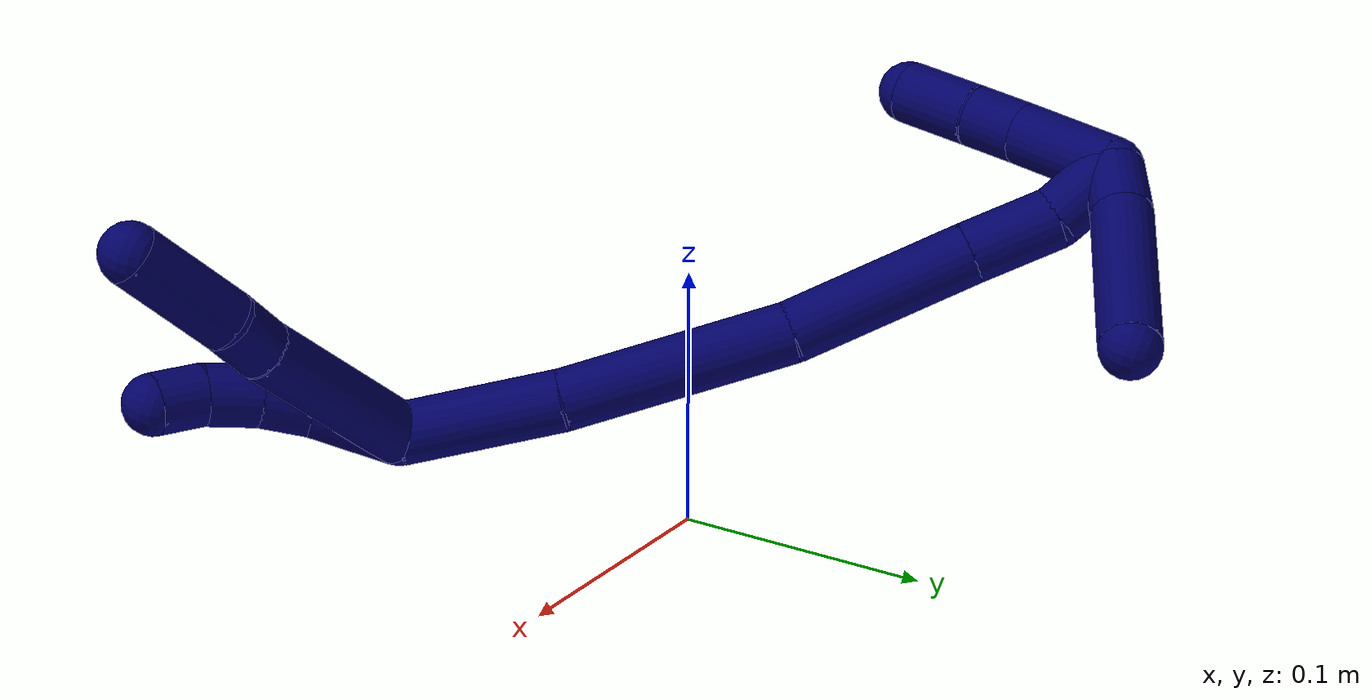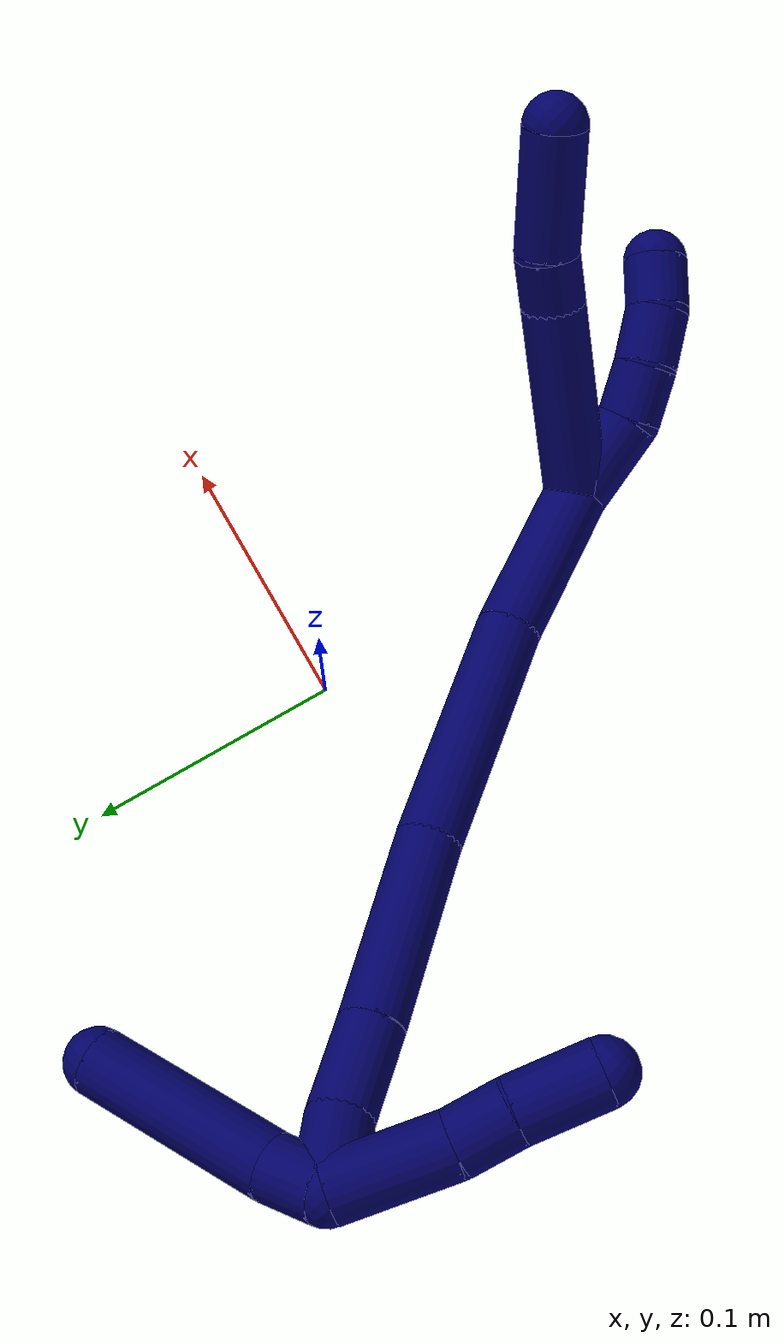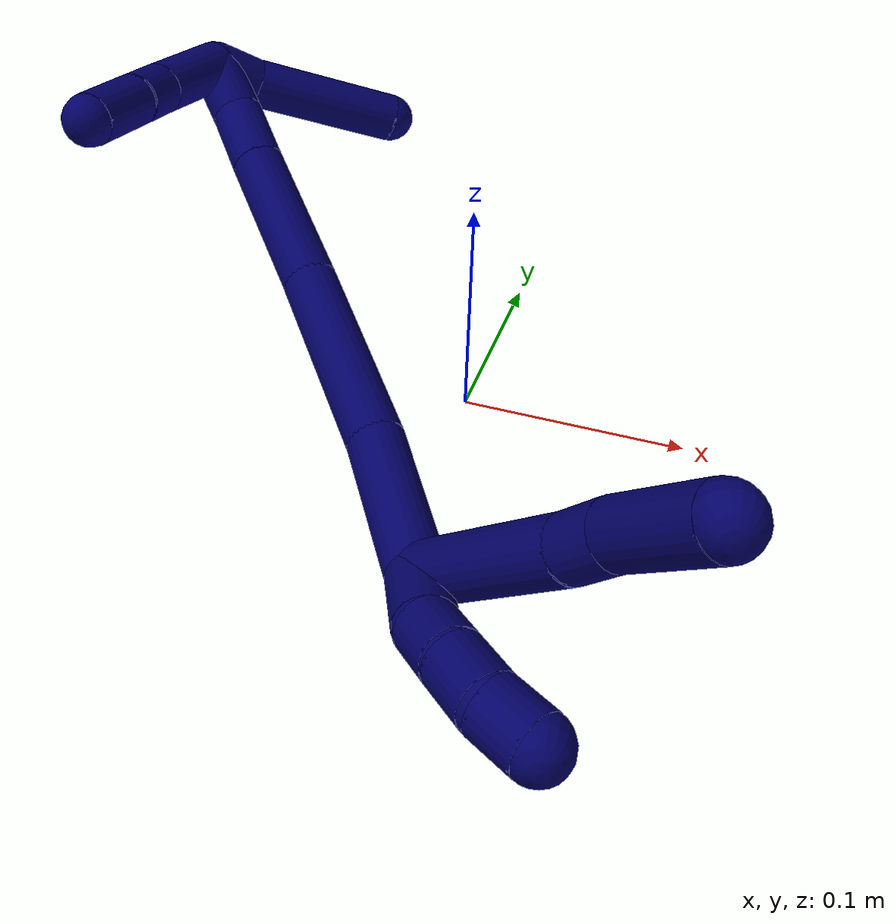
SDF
<sdf version="1.7">
 <world name="default">
  <model name="7">
   <static>0</static>
   <link name="7">
    <collision name="collision-cylinder-e_1_2_8">
     <pose>0.031743 0.00873 0.022664 -0.367682 0.917702 -0.183202</pose>
     <geometry><cylinder><radius>0.0125</radius><length>0.079937</length></cylinder></geometry>
     <surface>
      <friction><ode><mu>1.16</mu><mu2>1.16</mu2><slip1>0</slip1><slip2>0</slip2></ode></friction>
      <contact><ode><kp>1e+06</kp><kd>1</kd><max_vel>0</max_vel><min_depth>0.001</min_depth></ode></contact>
     </surface>
    </collision>
    <visual name="visual-cylinder-e_1_2_8">
     <pose>0.031743 0.00873 0.022664 -0.367682 0.917702 -0.183202</pose>
     <geometry><cylinder><radius>0.0125</radius><length>0.079937</length></cylinder></geometry>
     <material><ambient>0.003922 0 0.403922 1</ambient></material>
    </visual>
    <collision name="collision-cylinder-e_2_8_9">
     <pose>0.071839 0.020804 0.051016 -0.53148 0.902105 -0.262148</pose>
     <geometry><cylinder><radius>0.0125</radius><length>0.021289</length></cylinder></geometry>
     <surface>
      <friction><ode><mu>1.16</mu><mu2>1.16</mu2><slip1>0</slip1><slip2>0</slip2></ode></friction>
      <contact><ode><kp>1e+06</kp><kd>1</kd><max_vel>0</max_vel><min_depth>0.001</min_depth></ode></contact>
     </surface>
    </collision>
    <visual name="visual-cylinder-e_2_8_9">
     <pose>0.071839 0.020804 0.051016 -0.53148 0.902105 -0.262148</pose>
     <geometry><cylinder><radius>0.0125</radius><length>0.021289</length></cylinder></geometry>
     <material><ambient>0.003922 0 0.403922 1</ambient></material>
    </visual>
    <collision name="collision-cylinder-e_3_9_6">
     <pose>0.096616 0.030773 0.07347 -0.376283 0.738959 -0.147199</pose>
     <geometry><cylinder><radius>0.0125</radius><length>0.048774</length></cylinder></geometry>
     <surface>
      <friction><ode><mu>1.16</mu><mu2>1.16</mu2><slip1>0</slip1><slip2>0</slip2></ode></friction>
      <contact><ode><kp>1e+06</kp><kd>1</kd><max_vel>0</max_vel><min_depth>0.001</min_depth></ode></contact>
     </surface>
    </collision>
    <visual name="visual-cylinder-e_3_9_6">
     <pose>0.096616 0.030773 0.07347 -0.376283 0.738959 -0.147199</pose>
     <geometry><cylinder><radius>0.0125</radius><length>0.048774</length></cylinder></geometry>
     <material><ambient>0.003922 0 0.403922 1</ambient></material>
    </visual>
    <collision name="collision-cylinder-e_1_2_10">
     <pose>0.002617 -0.000566 0.017359 0.032619 0.149539 0.002444</pose>
     <geometry><cylinder><radius>0.0125</radius><length>0.035128</length></cylinder></geometry>
     <surface>
      <friction><ode><mu>1.16</mu><mu2>1.16</mu2><slip1>0</slip1><slip2>0</slip2></ode></friction>
      <contact><ode><kp>1e+06</kp><kd>1</kd><max_vel>0</max_vel><min_depth>0.001</min_depth></ode></contact>
     </surface>
    </collision>
    <visual name="visual-cylinder-e_1_2_10">
     <pose>0.002617 -0.000566 0.017359 0.032619 0.149539 0.002444</pose>
     <geometry><cylinder><radius>0.0125</radius><length>0.035128</length></cylinder></geometry>
     <material><ambient>0.003922 0 0.403922 1</ambient></material>
    </visual>
    <collision name="collision-cylinder-e_2_10_11">
     <pose>0.009974 -0.00259 0.04443 0.148878 0.449669 0.034108</pose>
     <geometry><cylinder><radius>0.0125</radius><length>0.02181</length></cylinder></geometry>
     <surface>
      <friction><ode><mu>1.16</mu><mu2>1.16</mu2><slip1>0</slip1><slip2>0</slip2></ode></friction>
      <contact><ode><kp>1e+06</kp><kd>1</kd><max_vel>0</max_vel><min_depth>0.001</min_depth></ode></contact>
     </surface>
    </collision>
    <visual name="visual-cylinder-e_2_10_11">
     <pose>0.009974 -0.00259 0.04443 0.148878 0.449669 0.034108</pose>
     <geometry><cylinder><radius>0.0125</radius><length>0.02181</length></cylinder></geometry>
     <material><ambient>0.003922 0 0.403922 1</ambient></material>
    </visual>
    <collision name="collision-cylinder-e_3_11_12">
     <pose>0.01994 -0.007262 0.063657 0.325959 0.47983 0.080409</pose>
     <geometry><cylinder><radius>0.0125</radius><length>0.022644</length></cylinder></geometry>
     <surface>
      <friction><ode><mu>1.16</mu><mu2>1.16</mu2><slip1>0</slip1><slip2>0</slip2></ode></friction>
      <contact><ode><kp>1e+06</kp><kd>1</kd><max_vel>0</max_vel><min_depth>0.001</min_depth></ode></contact>
     </surface>
    </collision>
    <visual name="visual-cylinder-e_3_11_12">
     <pose>0.01994 -0.007262 0.063657 0.325959 0.47983 0.080409</pose>
     <geometry><cylinder><radius>0.0125</radius><length>0.022644</length></cylinder></geometry>
     <material><ambient>0.003922 0 0.403922 1</ambient></material>
    </visual>
    <collision name="collision-cylinder-e_4_12_5">
     <pose>0.031276 -0.015029 0.079968 0.589983 0.64159 0.201244</pose>
     <geometry><cylinder><radius>0.0125</radius><length>0.020417</length></cylinder></geometry>
     <surface>
      <friction><ode><mu>1.16</mu><mu2>1.16</mu2><slip1>0</slip1><slip2>0</slip2></ode></friction>
      <contact><ode><kp>1e+06</kp><kd>1</kd><max_vel>0</max_vel><min_depth>0.001</min_depth></ode></contact>
     </surface>
    </collision>
    <visual name="visual-cylinder-e_4_12_5">
     <pose>0.031276 -0.015029 0.079968 0.589983 0.64159 0.201244</pose>
     <geometry><cylinder><radius>0.0125</radius><length>0.020417</length></cylinder></geometry>
     <material><ambient>0.003922 0 0.403922 1</ambient></material>
    </visual>
    <collision name="collision-cylinder-e_1_2_13">
     <pose>-0.004158 0.017003 -0.027377 -2.58584 -0.128322 0.44307</pose>
     <geometry><cylinder><radius>0.0125</radius><length>0.064989</length></cylinder></geometry>
     <surface>
      <friction><ode><mu>1.16</mu><mu2>1.16</mu2><slip1>0</slip1><slip2>0</slip2></ode></friction>
      <contact><ode><kp>1e+06</kp><kd>1</kd><max_vel>0</max_vel><min_depth>0.001</min_depth></ode></contact>
     </surface>
    </collision>
    <visual name="visual-cylinder-e_1_2_13">
     <pose>-0.004158 0.017003 -0.027377 -2.58584 -0.128322 0.44307</pose>
     <geometry><cylinder><radius>0.0125</radius><length>0.064989</length></cylinder></geometry>
     <material><ambient>0.003922 0 0.403922 1</ambient></material>
    </visual>
    <collision name="collision-cylinder-e_2_13_14">
     <pose>-0.017069 0.0615 -0.091287 -2.49642 -0.189127 0.552966</pose>
     <geometry><cylinder><radius>0.0125</radius><length>0.093107</length></cylinder></geometry>
     <surface>
      <friction><ode><mu>1.16</mu><mu2>1.16</mu2><slip1>0</slip1><slip2>0</slip2></ode></friction>
      <contact><ode><kp>1e+06</kp><kd>1</kd><max_vel>0</max_vel><min_depth>0.001</min_depth></ode></contact>
     </surface>
    </collision>
    <visual name="visual-cylinder-e_2_13_14">
     <pose>-0.017069 0.0615 -0.091287 -2.49642 -0.189127 0.552966</pose>
     <geometry><cylinder><radius>0.0125</radius><length>0.093107</length></cylinder></geometry>
     <material><ambient>0.003922 0 0.403922 1</ambient></material>
    </visual>
    <collision name="collision-cylinder-e_3_14_15">
     <pose>-0.032789 0.115137 -0.1545 -2.36639 -0.184439 0.445539</pose>
     <geometry><cylinder><radius>0.0125</radius><length>0.075995</length></cylinder></geometry>
     <surface>
      <friction><ode><mu>1.16</mu><mu2>1.16</mu2><slip1>0</slip1><slip2>0</slip2></ode></friction>
      <contact><ode><kp>1e+06</kp><kd>1</kd><max_vel>0</max_vel><min_depth>0.001</min_depth></ode></contact>
     </surface>
    </collision>
    <visual name="visual-cylinder-e_3_14_15">
     <pose>-0.032789 0.115137 -0.1545 -2.36639 -0.184439 0.445539</pose>
     <geometry><cylinder><radius>0.0125</radius><length>0.075995</length></cylinder></geometry>
     <material><ambient>0.003922 0 0.403922 1</ambient></material>
    </visual>
    <collision name="collision-cylinder-e_4_15_16">
     <pose>-0.042837 0.15344 -0.194231 -2.39143 -0.170925 0.428508</pose>
     <geometry><cylinder><radius>0.0125</radius><length>0.036203</length></cylinder></geometry>
     <surface>
      <friction><ode><mu>1.16</mu><mu2>1.16</mu2><slip1>0</slip1><slip2>0</slip2></ode></friction>
      <contact><ode><kp>1e+06</kp><kd>1</kd><max_vel>0</max_vel><min_depth>0.001</min_depth></ode></contact>
     </surface>
    </collision>
    <visual name="visual-cylinder-e_4_15_16">
     <pose>-0.042837 0.15344 -0.194231 -2.39143 -0.170925 0.428508</pose>
     <geometry><cylinder><radius>0.0125</radius><length>0.036203</length></cylinder></geometry>
     <material><ambient>0.003922 0 0.403922 1</ambient></material>
    </visual>
    <collision name="collision-cylinder-e_5_16_1">
     <pose>-0.047964 0.178482 -0.214386 -2.07492 -0.138349 0.233633</pose>
     <geometry><cylinder><radius>0.0125</radius><length>0.029706</length></cylinder></geometry>
     <surface>
      <friction><ode><mu>1.16</mu><mu2>1.16</mu2><slip1>0</slip1><slip2>0</slip2></ode></friction>
      <contact><ode><kp>1e+06</kp><kd>1</kd><max_vel>0</max_vel><min_depth>0.001</min_depth></ode></contact>
     </surface>
    </collision>
    <visual name="visual-cylinder-e_5_16_1">
     <pose>-0.047964 0.178482 -0.214386 -2.07492 -0.138349 0.233633</pose>
     <geometry><cylinder><radius>0.0125</radius><length>0.029706</length></cylinder></geometry>
     <material><ambient>0.003922 0 0.403922 1</ambient></material>
    </visual>
    <collision name="collision-cylinder-e_1_1_17">
     <pose>-0.043545 0.183282 -0.22691 2.16138 0.586706 1.03035</pose>
     <geometry><cylinder><radius>0.0125</radius><length>0.023366</length></cylinder></geometry>
     <surface>
      <friction><ode><mu>1.16</mu><mu2>1.16</mu2><slip1>0</slip1><slip2>0</slip2></ode></friction>
      <contact><ode><kp>1e+06</kp><kd>1</kd><max_vel>0</max_vel><min_depth>0.001</min_depth></ode></contact>
     </surface>
    </collision>
    <visual name="visual-cylinder-e_1_1_17">
     <pose>-0.043545 0.183282 -0.22691 2.16138 0.586706 1.03035</pose>
     <geometry><cylinder><radius>0.0125</radius><length>0.023366</length></cylinder></geometry>
     <material><ambient>0.003922 0 0.403922 1</ambient></material>
    </visual>
    <collision name="collision-cylinder-e_2_17_4">
     <pose>-0.009364 0.151959 -0.244976 2.06919 0.808505 1.2479</pose>
     <geometry><cylinder><radius>0.0125</radius><length>0.076634</length></cylinder></geometry>
     <surface>
      <friction><ode><mu>1.16</mu><mu2>1.16</mu2><slip1>0</slip1><slip2>0</slip2></ode></friction>
      <contact><ode><kp>1e+06</kp><kd>1</kd><max_vel>0</max_vel><min_depth>0.001</min_depth></ode></contact>
     </surface>
    </collision>
    <visual name="visual-cylinder-e_2_17_4">
     <pose>-0.009364 0.151959 -0.244976 2.06919 0.808505 1.2479</pose>
     <geometry><cylinder><radius>0.0125</radius><length>0.076634</length></cylinder></geometry>
     <material><ambient>0.003922 0 0.403922 1</ambient></material>
    </visual>
    <collision name="collision-cylinder-e_1_1_18">
     <pose>-0.059897 0.192202 -0.20136 -0.041645 -0.456037 0.009665</pose>
     <geometry><cylinder><radius>0.0125</radius><length>0.044887</length></cylinder></geometry>
     <surface>
      <friction><ode><mu>1.16</mu><mu2>1.16</mu2><slip1>0</slip1><slip2>0</slip2></ode></friction>
      <contact><ode><kp>1e+06</kp><kd>1</kd><max_vel>0</max_vel><min_depth>0.001</min_depth></ode></contact>
     </surface>
    </collision>
    <visual name="visual-cylinder-e_1_1_18">
     <pose>-0.059897 0.192202 -0.20136 -0.041645 -0.456037 0.009665</pose>
     <geometry><cylinder><radius>0.0125</radius><length>0.044887</length></cylinder></geometry>
     <material><ambient>0.003922 0 0.403922 1</ambient></material>
    </visual>
    <collision name="collision-cylinder-e_2_18_19">
     <pose>-0.073062 0.193293 -0.170455 -0.023349 -0.29565 0.003477</pose>
     <geometry><cylinder><radius>0.0125</radius><length>0.022528</length></cylinder></geometry>
     <surface>
      <friction><ode><mu>1.16</mu><mu2>1.16</mu2><slip1>0</slip1><slip2>0</slip2></ode></friction>
      <contact><ode><kp>1e+06</kp><kd>1</kd><max_vel>0</max_vel><min_depth>0.001</min_depth></ode></contact>
     </surface>
    </collision>
    <visual name="visual-cylinder-e_2_18_19">
     <pose>-0.073062 0.193293 -0.170455 -0.023349 -0.29565 0.003477</pose>
     <geometry><cylinder><radius>0.0125</radius><length>0.022528</length></cylinder></geometry>
     <material><ambient>0.003922 0 0.403922 1</ambient></material>
    </visual>
    <collision name="collision-cylinder-e_3_19_3">
     <pose>-0.082702 0.193864 -0.144685 -0.02129 -0.400844 0.004325</pose>
     <geometry><cylinder><radius>0.0125</radius><length>0.032585</length></cylinder></geometry>
     <surface>
      <friction><ode><mu>1.16</mu><mu2>1.16</mu2><slip1>0</slip1><slip2>0</slip2></ode></friction>
      <contact><ode><kp>1e+06</kp><kd>1</kd><max_vel>0</max_vel><min_depth>0.001</min_depth></ode></contact>
     </surface>
    </collision>
    <visual name="visual-cylinder-e_3_19_3">
     <pose>-0.082702 0.193864 -0.144685 -0.02129 -0.400844 0.004325</pose>
     <geometry><cylinder><radius>0.0125</radius><length>0.032585</length></cylinder></geometry>
     <material><ambient>0.003922 0 0.403922 1</ambient></material>
    </visual>
    <collision name="collision-sphere-3">
     <pose>-0.089059 0.194183 -0.129688 0 -0 0</pose>
     <geometry><sphere><radius>0.0125</radius></sphere></geometry>
     <surface>
      <friction><ode><mu>1.16</mu><mu2>1.16</mu2><slip1>0</slip1><slip2>0</slip2></ode></friction>
      <contact><ode><kp>1e+06</kp><kd>1</kd><max_vel>0</max_vel><min_depth>0.001</min_depth></ode></contact>
     </surface>
    </collision>
    <visual name="visual-sphere-3">
     <pose>-0.089059 0.194183 -0.129688 0 -0 0</pose>
     <geometry><sphere><radius>0.0125</radius></sphere></geometry>
     <material><ambient>0.003922 0 0.403922 1</ambient></material>
    </visual>
    <collision name="collision-sphere-19">
     <pose>-0.076344 0.193544 -0.159683 0 -0 0</pose>
     <geometry><sphere><radius>0.0125</radius></sphere></geometry>
     <surface>
      <friction><ode><mu>1.16</mu><mu2>1.16</mu2><slip1>0</slip1><slip2>0</slip2></ode></friction>
      <contact><ode><kp>1e+06</kp><kd>1</kd><max_vel>0</max_vel><min_depth>0.001</min_depth></ode></contact>
     </surface>
    </collision>
    <visual name="visual-sphere-19">
     <pose>-0.076344 0.193544 -0.159683 0 -0 0</pose>
     <geometry><sphere><radius>0.0125</radius></sphere></geometry>
     <material><ambient>0.003922 0 0.403922 1</ambient></material>
    </visual>
    <collision name="collision-sphere-11">
     <pose>0.014714 -0.004046 0.054143 0 -0 0</pose>
     <geometry><sphere><radius>0.0125</radius></sphere></geometry>
     <surface>
      <friction><ode><mu>1.16</mu><mu2>1.16</mu2><slip1>0</slip1><slip2>0</slip2></ode></friction>
      <contact><ode><kp>1e+06</kp><kd>1</kd><max_vel>0</max_vel><min_depth>0.001</min_depth></ode></contact>
     </surface>
    </collision>
    <visual name="visual-sphere-11">
     <pose>0.014714 -0.004046 0.054143 0 -0 0</pose>
     <geometry><sphere><radius>0.0125</radius></sphere></geometry>
     <material><ambient>0.003922 0 0.403922 1</ambient></material>
    </visual>
    <collision name="collision-sphere-10">
     <pose>0.005234 -0.001133 0.034718 0 -0 0</pose>
     <geometry><sphere><radius>0.0125</radius></sphere></geometry>
     <surface>
      <friction><ode><mu>1.16</mu><mu2>1.16</mu2><slip1>0</slip1><slip2>0</slip2></ode></friction>
      <contact><ode><kp>1e+06</kp><kd>1</kd><max_vel>0</max_vel><min_depth>0.001</min_depth></ode></contact>
     </surface>
    </collision>
    <visual name="visual-sphere-10">
     <pose>0.005234 -0.001133 0.034718 0 -0 0</pose>
     <geometry><sphere><radius>0.0125</radius></sphere></geometry>
     <material><ambient>0.003922 0 0.403922 1</ambient></material>
    </visual>
    <collision name="collision-sphere-6">
     <pose>0.113041 0.037397 0.090235 0 -0 0</pose>
     <geometry><sphere><radius>0.0125</radius></sphere></geometry>
     <surface>
      <friction><ode><mu>1.16</mu><mu2>1.16</mu2><slip1>0</slip1><slip2>0</slip2></ode></friction>
      <contact><ode><kp>1e+06</kp><kd>1</kd><max_vel>0</max_vel><min_depth>0.001</min_depth></ode></contact>
     </surface>
    </collision>
    <visual name="visual-sphere-6">
     <pose>0.113041 0.037397 0.090235 0 -0 0</pose>
     <geometry><sphere><radius>0.0125</radius></sphere></geometry>
     <material><ambient>0.003922 0 0.403922 1</ambient></material>
    </visual>
    <collision name="collision-sphere-9">
     <pose>0.080191 0.024149 0.056705 0 -0 0</pose>
     <geometry><sphere><radius>0.0125</radius></sphere></geometry>
     <surface>
      <friction><ode><mu>1.16</mu><mu2>1.16</mu2><slip1>0</slip1><slip2>0</slip2></ode></friction>
      <contact><ode><kp>1e+06</kp><kd>1</kd><max_vel>0</max_vel><min_depth>0.001</min_depth></ode></contact>
     </surface>
    </collision>
    <visual name="visual-sphere-9">
     <pose>0.080191 0.024149 0.056705 0 -0 0</pose>
     <geometry><sphere><radius>0.0125</radius></sphere></geometry>
     <material><ambient>0.003922 0 0.403922 1</ambient></material>
    </visual>
    <collision name="collision-sphere-2">
     <geometry><sphere><radius>0.0125</radius></sphere></geometry>
     <surface>
      <friction><ode><mu>1.16</mu><mu2>1.16</mu2><slip1>0</slip1><slip2>0</slip2></ode></friction>
      <contact><ode><kp>1e+06</kp><kd>1</kd><max_vel>0</max_vel><min_depth>0.001</min_depth></ode></contact>
     </surface>
    </collision>
    <visual name="visual-sphere-2">
     <geometry><sphere><radius>0.0125</radius></sphere></geometry>
     <material><ambient>0.003922 0 0.403922 1</ambient></material>
    </visual>
    <collision name="collision-sphere-8">
     <pose>0.063487 0.01746 0.045327 0 -0 0</pose>
     <geometry><sphere><radius>0.0125</radius></sphere></geometry>
     <surface>
      <friction><ode><mu>1.16</mu><mu2>1.16</mu2><slip1>0</slip1><slip2>0</slip2></ode></friction>
      <contact><ode><kp>1e+06</kp><kd>1</kd><max_vel>0</max_vel><min_depth>0.001</min_depth></ode></contact>
     </surface>
    </collision>
    <visual name="visual-sphere-8">
     <pose>0.063487 0.01746 0.045327 0 -0 0</pose>
     <geometry><sphere><radius>0.0125</radius></sphere></geometry>
     <material><ambient>0.003922 0 0.403922 1</ambient></material>
    </visual>
    <collision name="collision-sphere-12">
     <pose>0.025167 -0.010478 0.073172 0 -0 0</pose>
     <geometry><sphere><radius>0.0125</radius></sphere></geometry>
     <surface>
      <friction><ode><mu>1.16</mu><mu2>1.16</mu2><slip1>0</slip1><slip2>0</slip2></ode></friction>
      <contact><ode><kp>1e+06</kp><kd>1</kd><max_vel>0</max_vel><min_depth>0.001</min_depth></ode></contact>
     </surface>
    </collision>
    <visual name="visual-sphere-12">
     <pose>0.025167 -0.010478 0.073172 0 -0 0</pose>
     <geometry><sphere><radius>0.0125</radius></sphere></geometry>
     <material><ambient>0.003922 0 0.403922 1</ambient></material>
    </visual>
    <collision name="collision-sphere-5">
     <pose>0.037386 -0.019579 0.086764 0 -0 0</pose>
     <geometry><sphere><radius>0.0125</radius></sphere></geometry>
     <surface>
      <friction><ode><mu>1.16</mu><mu2>1.16</mu2><slip1>0</slip1><slip2>0</slip2></ode></friction>
      <contact><ode><kp>1e+06</kp><kd>1</kd><max_vel>0</max_vel><min_depth>0.001</min_depth></ode></contact>
     </surface>
    </collision>
    <visual name="visual-sphere-5">
     <pose>0.037386 -0.019579 0.086764 0 -0 0</pose>
     <geometry><sphere><radius>0.0125</radius></sphere></geometry>
     <material><ambient>0.003922 0 0.403922 1</ambient></material>
    </visual>
    <collision name="collision-sphere-13">
     <pose>-0.008317 0.034005 -0.054754 0 -0 0</pose>
     <geometry><sphere><radius>0.0125</radius></sphere></geometry>
     <surface>
      <friction><ode><mu>1.16</mu><mu2>1.16</mu2><slip1>0</slip1><slip2>0</slip2></ode></friction>
      <contact><ode><kp>1e+06</kp><kd>1</kd><max_vel>0</max_vel><min_depth>0.001</min_depth></ode></contact>
     </surface>
    </collision>
    <visual name="visual-sphere-13">
     <pose>-0.008317 0.034005 -0.054754 0 -0 0</pose>
     <geometry><sphere><radius>0.0125</radius></sphere></geometry>
     <material><ambient>0.003922 0 0.403922 1</ambient></material>
    </visual>
    <collision name="collision-sphere-14">
     <pose>-0.025821 0.088995 -0.12782 0 -0 0</pose>
     <geometry><sphere><radius>0.0125</radius></sphere></geometry>
     <surface>
      <friction><ode><mu>1.16</mu><mu2>1.16</mu2><slip1>0</slip1><slip2>0</slip2></ode></friction>
      <contact><ode><kp>1e+06</kp><kd>1</kd><max_vel>0</max_vel><min_depth>0.001</min_depth></ode></contact>
     </surface>
    </collision>
    <visual name="visual-sphere-14">
     <pose>-0.025821 0.088995 -0.12782 0 -0 0</pose>
     <geometry><sphere><radius>0.0125</radius></sphere></geometry>
     <material><ambient>0.003922 0 0.403922 1</ambient></material>
    </visual>
    <collision name="collision-sphere-15">
     <pose>-0.039758 0.141279 -0.181181 0 -0 0</pose>
     <geometry><sphere><radius>0.0125</radius></sphere></geometry>
     <surface>
      <friction><ode><mu>1.16</mu><mu2>1.16</mu2><slip1>0</slip1><slip2>0</slip2></ode></friction>
      <contact><ode><kp>1e+06</kp><kd>1</kd><max_vel>0</max_vel><min_depth>0.001</min_depth></ode></contact>
     </surface>
    </collision>
    <visual name="visual-sphere-15">
     <pose>-0.039758 0.141279 -0.181181 0 -0 0</pose>
     <geometry><sphere><radius>0.0125</radius></sphere></geometry>
     <material><ambient>0.003922 0 0.403922 1</ambient></material>
    </visual>
    <collision name="collision-sphere-16">
     <pose>-0.045916 0.165601 -0.20728 0 -0 0</pose>
     <geometry><sphere><radius>0.0125</radius></sphere></geometry>
     <surface>
      <friction><ode><mu>1.16</mu><mu2>1.16</mu2><slip1>0</slip1><slip2>0</slip2></ode></friction>
      <contact><ode><kp>1e+06</kp><kd>1</kd><max_vel>0</max_vel><min_depth>0.001</min_depth></ode></contact>
     </surface>
    </collision>
    <visual name="visual-sphere-16">
     <pose>-0.045916 0.165601 -0.20728 0 -0 0</pose>
     <geometry><sphere><radius>0.0125</radius></sphere></geometry>
     <material><ambient>0.003922 0 0.403922 1</ambient></material>
    </visual>
    <collision name="collision-sphere-1">
     <pose>-0.050013 0.191363 -0.221492 0 -0 0</pose>
     <geometry><sphere><radius>0.0125</radius></sphere></geometry>
     <surface>
      <friction><ode><mu>1.16</mu><mu2>1.16</mu2><slip1>0</slip1><slip2>0</slip2></ode></friction>
      <contact><ode><kp>1e+06</kp><kd>1</kd><max_vel>0</max_vel><min_depth>0.001</min_depth></ode></contact>
     </surface>
    </collision>
    <visual name="visual-sphere-1">
     <pose>-0.050013 0.191363 -0.221492 0 -0 0</pose>
     <geometry><sphere><radius>0.0125</radius></sphere></geometry>
     <material><ambient>0.003922 0 0.403922 1</ambient></material>
    </visual>
    <collision name="collision-sphere-18">
     <pose>-0.06978 0.193041 -0.181228 0 -0 0</pose>
     <geometry><sphere><radius>0.0125</radius></sphere></geometry>
     <surface>
      <friction><ode><mu>1.16</mu><mu2>1.16</mu2><slip1>0</slip1><slip2>0</slip2></ode></friction>
      <contact><ode><kp>1e+06</kp><kd>1</kd><max_vel>0</max_vel><min_depth>0.001</min_depth></ode></contact>
     </surface>
    </collision>
    <visual name="visual-sphere-18">
     <pose>-0.06978 0.193041 -0.181228 0 -0 0</pose>
     <geometry><sphere><radius>0.0125</radius></sphere></geometry>
     <material><ambient>0.003922 0 0.403922 1</ambient></material>
    </visual>
    <collision name="collision-sphere-17">
     <pose>-0.037077 0.175201 -0.232328 0 -0 0</pose>
     <geometry><sphere><radius>0.0125</radius></sphere></geometry>
     <surface>
      <friction><ode><mu>1.16</mu><mu2>1.16</mu2><slip1>0</slip1><slip2>0</slip2></ode></friction>
      <contact><ode><kp>1e+06</kp><kd>1</kd><max_vel>0</max_vel><min_depth>0.001</min_depth></ode></contact>
     </surface>
    </collision>
    <visual name="visual-sphere-17">
     <pose>-0.037077 0.175201 -0.232328 0 -0 0</pose>
     <geometry><sphere><radius>0.0125</radius></sphere></geometry>
     <material><ambient>0.003922 0 0.403922 1</ambient></material>
    </visual>
    <collision name="collision-sphere-4">
     <pose>0.018349 0.128717 -0.257625 0 -0 0</pose>
     <geometry><sphere><radius>0.0125</radius></sphere></geometry>
     <surface>
      <friction><ode><mu>1.16</mu><mu2>1.16</mu2><slip1>0</slip1><slip2>0</slip2></ode></friction>
      <contact><ode><kp>1e+06</kp><kd>1</kd><max_vel>0</max_vel><min_depth>0.001</min_depth></ode></contact>
     </surface>
    </collision>
    <visual name="visual-sphere-4">
     <pose>0.018349 0.128717 -0.257625 0 -0 0</pose>
     <geometry><sphere><radius>0.0125</radius></sphere></geometry>
     <material><ambient>0.003922 0 0.403922 1</ambient></material>
    </visual>
    <inertial>
     <pose>-0.007884 0.085012 -0.08794 0 -0 0</pose>
     <mass>0.75</mass>
     <inertia>
      <ixx>0.000294</ixx>
      <ixy>0</ixy>
      <ixz>0</ixz>
      <iyy>0.00011</iyy>
      <iyz>0</iyz>
      <izz>-0.000122</izz>
     </inertia>
    </inertial>
   </link>
   <pose>0.017353 -0.122956 0.012536 1.30377 -0.399591 0.36398</pose>
  </model>
 </world>
</sdf>
